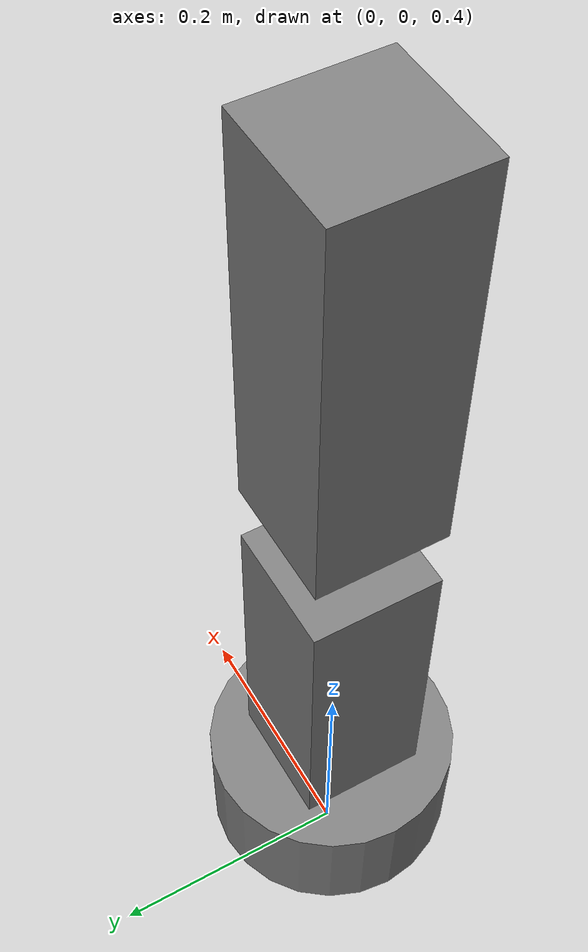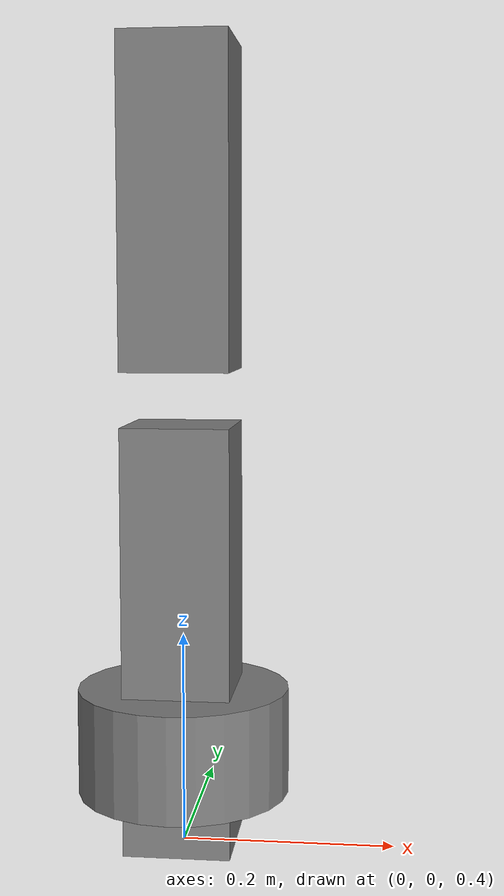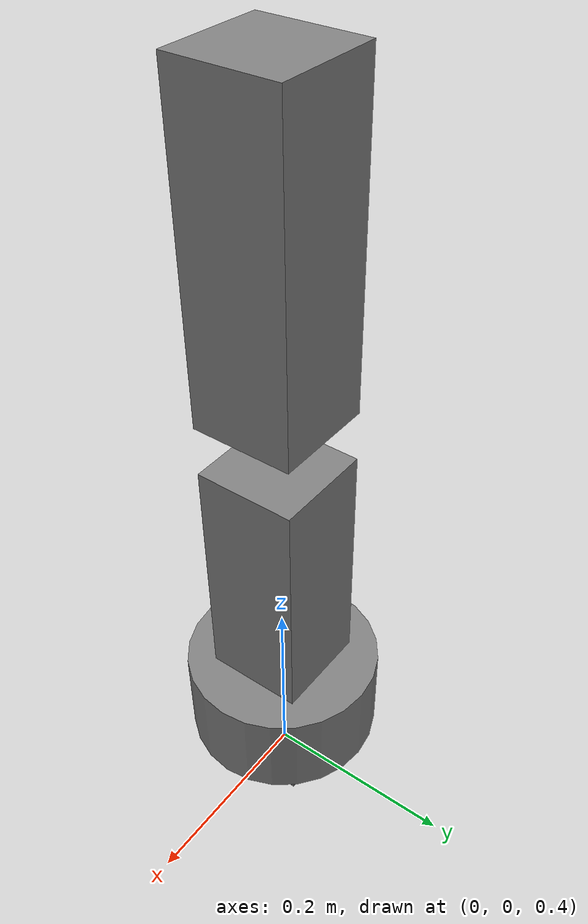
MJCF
<mujoco>
  <worldbody>
    <body name="base" pos="0 0 0.5">
      <geom name="base_geom" type="cylinder" size="0.1 0.05" mass="5.0"/>
      <body name="link1" pos="0 0 0.1">
        <joint name="joint1" type="hinge" axis="0 0 1" range="-3.14 3.14"/>
        <geom name="link1_geom" type="box" size="0.05 0.05 0.2" mass="1.0"/>
        <body name="link2" pos="0 0 0.4">
          <joint name="joint2" type="hinge" axis="0 1 0" range="-1.57 1.57"/>
          <geom name="link2_geom" type="box" size="0.05 0.05 0.15" mass="0.5"/>
        </body>
      </body>
    </body>
  </worldbody>
</mujoco>
